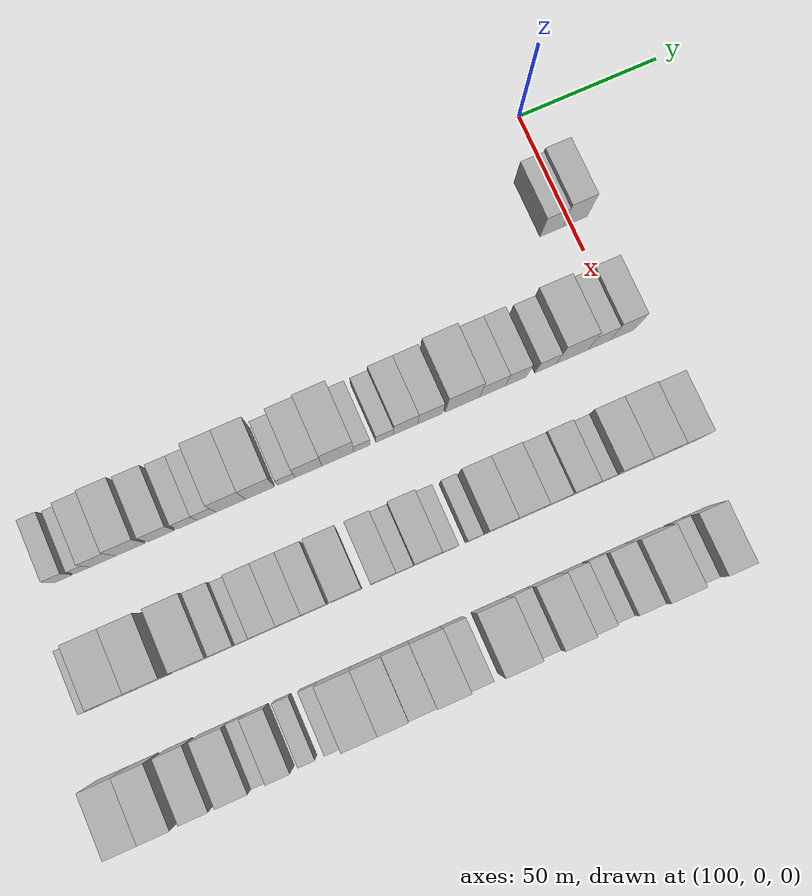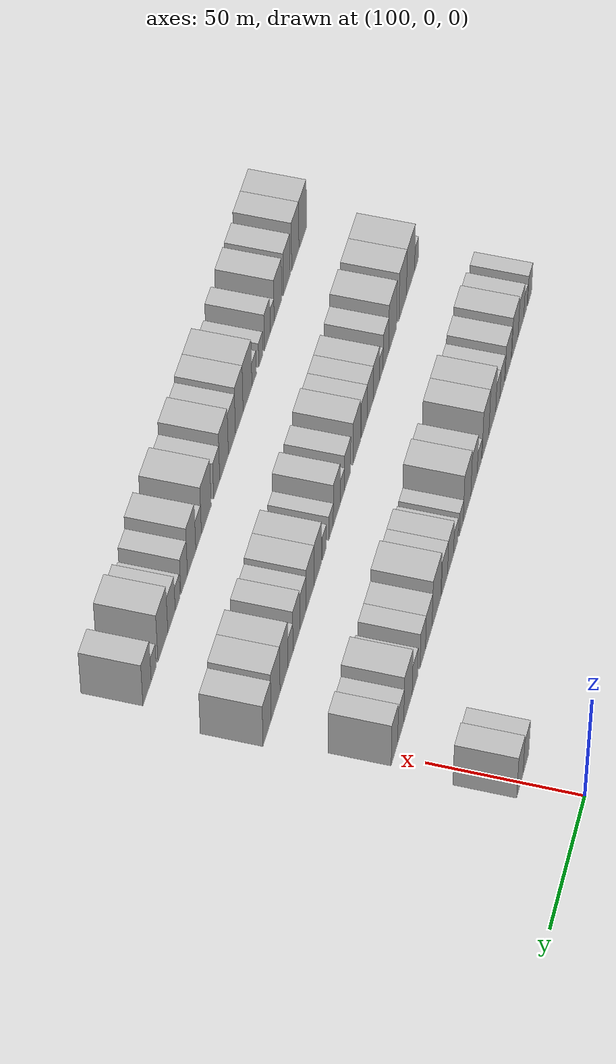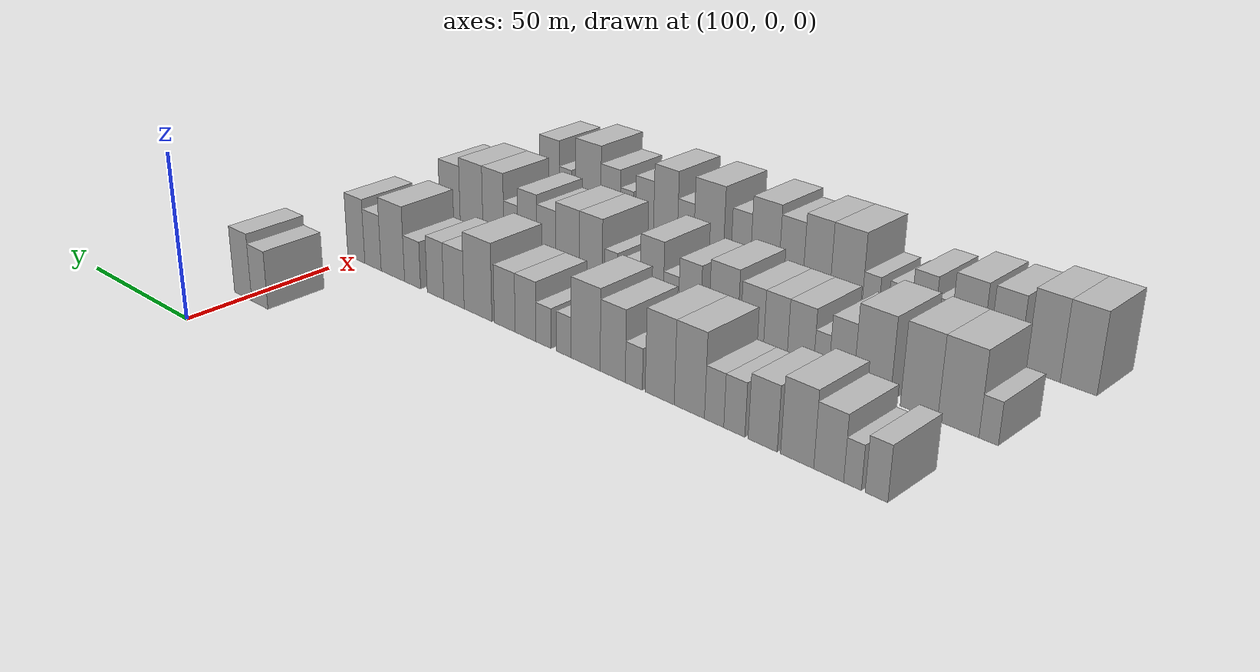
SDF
<sdf version="1.6">
 <world name="default">
  <model name="building_349">
   <static>1</static>
   <pose>130.0000 -6.8928 0 0.000000 0.000000 0.000000</pose>
   <link name="link">
    <pose>0 0 9.00 0 0 0</pose>
    <collision name="collision"><geometry><box><size>20.0000 8.0718 18.0000</size></box></geometry></collision>
    <visual name="visual">
     <cast_shadows>0</cast_shadows>
     <geometry><box><size>20.0000 8.0718 18.0000</size></box></geometry>
     <material>
      <script>
       <uri>model://HANNAS_wall/materials/scripts</uri>
       <uri>model://HANNAS_wall/materials/textures</uri>
       <name>vrc/HANNAS_wall</name>
      </script>
     </material>
    </visual>
   </link>
  </model>
  <model name="building_350">
   <static>1</static>
   <pose>130.0000 1.5265 0 0.000000 0.000000 0.000000</pose>
   <link name="link">
    <pose>0 0 10.50 0 0 0</pose>
    <collision name="collision"><geometry><box><size>20.0000 8.7669 21.0000</size></box></geometry></collision>
    <visual name="visual">
     <cast_shadows>0</cast_shadows>
     <geometry><box><size>20.0000 8.7669 21.0000</size></box></geometry>
     <material>
      <script>
       <uri>model://HANNAS_wall/materials/scripts</uri>
       <uri>model://HANNAS_wall/materials/textures</uri>
       <name>vrc/HANNAS_wall</name>
      </script>
     </material>
    </visual>
   </link>
  </model>
  <model name="building_469">
   <static>1</static>
   <pose>170.0000 -191.6110 0 0.000000 0.000000 0.000000</pose>
   <link name="link">
    <pose>0 0 7.50 0 0 0</pose>
    <collision name="collision"><geometry><box><size>20.0000 6.1556 15.0000</size></box></geometry></collision>
    <visual name="visual">
     <cast_shadows>0</cast_shadows>
     <geometry><box><size>20.0000 6.1556 15.0000</size></box></geometry>
     <material>
      <script>
       <uri>model://HANNAS_wall/materials/scripts</uri>
       <uri>model://HANNAS_wall/materials/textures</uri>
       <name>vrc/HANNAS_wall</name>
      </script>
     </material>
    </visual>
   </link>
  </model>
  <model name="building_470">
   <static>1</static>
   <pose>170.0000 -185.0662 0 0.000000 0.000000 0.000000</pose>
   <link name="link">
    <pose>0 0 6.00 0 0 0</pose>
    <collision name="collision"><geometry><box><size>20.0000 4.9342 12.0000</size></box></geometry></collision>
    <visual name="visual">
     <cast_shadows>0</cast_shadows>
     <geometry><box><size>20.0000 4.9342 12.0000</size></box></geometry>
     <material>
      <script>
       <uri>model://HANNAS_wall/materials/scripts</uri>
       <uri>model://HANNAS_wall/materials/textures</uri>
       <name>vrc/HANNAS_wall</name>
      </script>
     </material>
    </visual>
   </link>
  </model>
  <model name="building_471">
   <static>1</static>
   <pose>170.0000 -178.3505 0 0.000000 0.000000 0.000000</pose>
   <link name="link">
    <pose>0 0 9.00 0 0 0</pose>
    <collision name="collision"><geometry><box><size>20.0000 8.4971 18.0000</size></box></geometry></collision>
    <visual name="visual">
     <cast_shadows>0</cast_shadows>
     <geometry><box><size>20.0000 8.4971 18.0000</size></box></geometry>
     <material>
      <script>
       <uri>model://HANNAS_wall/materials/scripts</uri>
       <uri>model://HANNAS_wall/materials/textures</uri>
       <name>vrc/HANNAS_wall</name>
      </script>
     </material>
    </visual>
   </link>
  </model>
  <model name="building_472">
   <static>1</static>
   <pose>170.0000 -169.2389 0 0.000000 0.000000 0.000000</pose>
   <link name="link">
    <pose>0 0 10.50 0 0 0</pose>
    <collision name="collision"><geometry><box><size>20.0000 9.7262 21.0000</size></box></geometry></collision>
    <visual name="visual">
     <cast_shadows>0</cast_shadows>
     <geometry><box><size>20.0000 9.7262 21.0000</size></box></geometry>
     <material>
      <script>
       <uri>model://HANNAS_wall/materials/scripts</uri>
       <uri>model://HANNAS_wall/materials/textures</uri>
       <name>vrc/HANNAS_wall</name>
      </script>
     </material>
    </visual>
   </link>
  </model>
  <model name="building_473">
   <static>1</static>
   <pose>170.0000 -158.9366 0 0.000000 0.000000 0.000000</pose>
   <link name="link">
    <pose>0 0 9.00 0 0 0</pose>
    <collision name="collision"><geometry><box><size>20.0000 8.8783 18.0000</size></box></geometry></collision>
    <visual name="visual">
     <cast_shadows>0</cast_shadows>
     <geometry><box><size>20.0000 8.8783 18.0000</size></box></geometry>
     <material>
      <script>
       <uri>model://HANNAS_wall/materials/scripts</uri>
       <uri>model://HANNAS_wall/materials/textures</uri>
       <name>vrc/HANNAS_wall</name>
      </script>
     </material>
    </visual>
   </link>
  </model>
  <model name="building_474">
   <static>1</static>
   <pose>170.0000 -150.1886 0 0.000000 0.000000 0.000000</pose>
   <link name="link">
    <pose>0 0 7.50 0 0 0</pose>
    <collision name="collision"><geometry><box><size>20.0000 6.6178 15.0000</size></box></geometry></collision>
    <visual name="visual">
     <cast_shadows>0</cast_shadows>
     <geometry><box><size>20.0000 6.6178 15.0000</size></box></geometry>
     <material>
      <script>
       <uri>model://HANNAS_wall/materials/scripts</uri>
       <uri>model://HANNAS_wall/materials/textures</uri>
       <name>vrc/HANNAS_wall</name>
      </script>
     </material>
    </visual>
   </link>
  </model>
  <model name="building_475">
   <static>1</static>
   <pose>170.0000 -143.7810 0 0.000000 0.000000 0.000000</pose>
   <link name="link">
    <pose>0 0 7.50 0 0 0</pose>
    <collision name="collision"><geometry><box><size>20.0000 6.1973 15.0000</size></box></geometry></collision>
    <visual name="visual">
     <cast_shadows>0</cast_shadows>
     <geometry><box><size>20.0000 6.1973 15.0000</size></box></geometry>
     <material>
      <script>
       <uri>model://HANNAS_wall/materials/scripts</uri>
       <uri>model://HANNAS_wall/materials/textures</uri>
       <name>vrc/HANNAS_wall</name>
      </script>
     </material>
    </visual>
   </link>
  </model>
  <model name="building_476">
   <static>1</static>
   <pose>170.0000 -135.6864 0 0.000000 0.000000 0.000000</pose>
   <link name="link">
    <pose>0 0 12.00 0 0 0</pose>
    <collision name="collision"><geometry><box><size>20.0000 9.9919 24.0000</size></box></geometry></collision>
    <visual name="visual">
     <cast_shadows>0</cast_shadows>
     <geometry><box><size>20.0000 9.9919 24.0000</size></box></geometry>
     <material>
      <script>
       <uri>model://HANNAS_wall/materials/scripts</uri>
       <uri>model://HANNAS_wall/materials/textures</uri>
       <name>vrc/HANNAS_wall</name>
      </script>
     </material>
    </visual>
   </link>
  </model>
  <model name="building_477">
   <static>1</static>
   <pose>170.0000 -125.7331 0 0.000000 0.000000 0.000000</pose>
   <link name="link">
    <pose>0 0 12.00 0 0 0</pose>
    <collision name="collision"><geometry><box><size>20.0000 9.9149 24.0000</size></box></geometry></collision>
    <visual name="visual">
     <cast_shadows>0</cast_shadows>
     <geometry><box><size>20.0000 9.9149 24.0000</size></box></geometry>
     <material>
      <script>
       <uri>model://HANNAS_wall/materials/scripts</uri>
       <uri>model://HANNAS_wall/materials/textures</uri>
       <name>vrc/HANNAS_wall</name>
      </script>
     </material>
    </visual>
   </link>
  </model>
  <model name="building_478">
   <static>1</static>
   <pose>170.0000 -116.7799 0 0.000000 0.000000 0.000000</pose>
   <link name="link">
    <pose>0 0 6.00 0 0 0</pose>
    <collision name="collision"><geometry><box><size>20.0000 5.9915 12.0000</size></box></geometry></collision>
    <visual name="visual">
     <cast_shadows>0</cast_shadows>
     <geometry><box><size>20.0000 5.9915 12.0000</size></box></geometry>
     <material>
      <script>
       <uri>model://HANNAS_wall/materials/scripts</uri>
       <uri>model://HANNAS_wall/materials/textures</uri>
       <name>vrc/HANNAS_wall</name>
      </script>
     </material>
    </visual>
   </link>
  </model>
  <model name="building_479">
   <static>1</static>
   <pose>170.0000 -109.2508 0 0.000000 0.000000 0.000000</pose>
   <link name="link">
    <pose>0 0 10.50 0 0 0</pose>
    <collision name="collision"><geometry><box><size>20.0000 9.0666 21.0000</size></box></geometry></collision>
    <visual name="visual">
     <cast_shadows>0</cast_shadows>
     <geometry><box><size>20.0000 9.0666 21.0000</size></box></geometry>
     <material>
      <script>
       <uri>model://HANNAS_wall/materials/scripts</uri>
       <uri>model://HANNAS_wall/materials/textures</uri>
       <name>vrc/HANNAS_wall</name>
      </script>
     </material>
    </visual>
   </link>
  </model>
  <model name="building_480">
   <static>1</static>
   <pose>170.0000 -99.3218 0 0.000000 0.000000 0.000000</pose>
   <link name="link">
    <pose>0 0 12.00 0 0 0</pose>
    <collision name="collision"><geometry><box><size>20.0000 10.7915 24.0000</size></box></geometry></collision>
    <visual name="visual">
     <cast_shadows>0</cast_shadows>
     <geometry><box><size>20.0000 10.7915 24.0000</size></box></geometry>
     <material>
      <script>
       <uri>model://HANNAS_wall/materials/scripts</uri>
       <uri>model://HANNAS_wall/materials/textures</uri>
       <name>vrc/HANNAS_wall</name>
      </script>
     </material>
    </visual>
   </link>
  </model>
  <model name="building_481">
   <static>1</static>
   <pose>170.0000 -91.1072 0 0.000000 0.000000 0.000000</pose>
   <link name="link">
    <pose>0 0 6.00 0 0 0</pose>
    <collision name="collision"><geometry><box><size>20.0000 5.6377 12.0000</size></box></geometry></collision>
    <visual name="visual">
     <cast_shadows>0</cast_shadows>
     <geometry><box><size>20.0000 5.6377 12.0000</size></box></geometry>
     <material>
      <script>
       <uri>model://HANNAS_wall/materials/scripts</uri>
       <uri>model://HANNAS_wall/materials/textures</uri>
       <name>vrc/HANNAS_wall</name>
      </script>
     </material>
    </visual>
   </link>
  </model>
  <model name="building_482">
   <static>1</static>
   <pose>170.0000 -83.3127 0 0.000000 0.000000 0.000000</pose>
   <link name="link">
    <pose>0 0 6.00 0 0 0</pose>
    <collision name="collision"><geometry><box><size>20.0000 5.9513 12.0000</size></box></geometry></collision>
    <visual name="visual">
     <cast_shadows>0</cast_shadows>
     <geometry><box><size>20.0000 5.9513 12.0000</size></box></geometry>
     <material>
      <script>
       <uri>model://HANNAS_wall/materials/scripts</uri>
       <uri>model://HANNAS_wall/materials/textures</uri>
       <name>vrc/HANNAS_wall</name>
      </script>
     </material>
    </visual>
   </link>
  </model>
  <model name="building_483">
   <static>1</static>
   <pose>170.0000 -76.1805 0 0.000000 0.000000 0.000000</pose>
   <link name="link">
    <pose>0 0 9.00 0 0 0</pose>
    <collision name="collision"><geometry><box><size>20.0000 8.3131 18.0000</size></box></geometry></collision>
    <visual name="visual">
     <cast_shadows>0</cast_shadows>
     <geometry><box><size>20.0000 8.3131 18.0000</size></box></geometry>
     <material>
      <script>
       <uri>model://HANNAS_wall/materials/scripts</uri>
       <uri>model://HANNAS_wall/materials/textures</uri>
       <name>vrc/HANNAS_wall</name>
      </script>
     </material>
    </visual>
   </link>
  </model>
  <model name="building_484">
   <static>1</static>
   <pose>170.0000 -67.7469 0 0.000000 0.000000 0.000000</pose>
   <link name="link">
    <pose>0 0 9.00 0 0 0</pose>
    <collision name="collision"><geometry><box><size>20.0000 8.5540 18.0000</size></box></geometry></collision>
    <visual name="visual">
     <cast_shadows>0</cast_shadows>
     <geometry><box><size>20.0000 8.5540 18.0000</size></box></geometry>
     <material>
      <script>
       <uri>model://HANNAS_wall/materials/scripts</uri>
       <uri>model://HANNAS_wall/materials/textures</uri>
       <name>vrc/HANNAS_wall</name>
      </script>
     </material>
    </visual>
   </link>
  </model>
  <model name="building_485">
   <static>1</static>
   <pose>170.0000 -56.5778 0 0.000000 0.000000 0.000000</pose>
   <link name="link">
    <pose>0 0 12.00 0 0 0</pose>
    <collision name="collision"><geometry><box><size>20.0000 11.7844 24.0000</size></box></geometry></collision>
    <visual name="visual">
     <cast_shadows>0</cast_shadows>
     <geometry><box><size>20.0000 11.7844 24.0000</size></box></geometry>
     <material>
      <script>
       <uri>model://HANNAS_wall/materials/scripts</uri>
       <uri>model://HANNAS_wall/materials/textures</uri>
       <name>vrc/HANNAS_wall</name>
      </script>
     </material>
    </visual>
   </link>
  </model>
  <model name="building_486">
   <static>1</static>
   <pose>170.0000 -46.2279 0 0.000000 0.000000 0.000000</pose>
   <link name="link">
    <pose>0 0 9.00 0 0 0</pose>
    <collision name="collision"><geometry><box><size>20.0000 8.9153 18.0000</size></box></geometry></collision>
    <visual name="visual">
     <cast_shadows>0</cast_shadows>
     <geometry><box><size>20.0000 8.9153 18.0000</size></box></geometry>
     <material>
      <script>
       <uri>model://HANNAS_wall/materials/scripts</uri>
       <uri>model://HANNAS_wall/materials/textures</uri>
       <name>vrc/HANNAS_wall</name>
      </script>
     </material>
    </visual>
   </link>
  </model>
  <model name="building_487">
   <static>1</static>
   <pose>170.0000 -38.0439 0 0.000000 0.000000 0.000000</pose>
   <link name="link">
    <pose>0 0 9.00 0 0 0</pose>
    <collision name="collision"><geometry><box><size>20.0000 7.4527 18.0000</size></box></geometry></collision>
    <visual name="visual">
     <cast_shadows>0</cast_shadows>
     <geometry><box><size>20.0000 7.4527 18.0000</size></box></geometry>
     <material>
      <script>
       <uri>model://HANNAS_wall/materials/scripts</uri>
       <uri>model://HANNAS_wall/materials/textures</uri>
       <name>vrc/HANNAS_wall</name>
      </script>
     </material>
    </visual>
   </link>
  </model>
  <model name="building_488">
   <static>1</static>
   <pose>170.0000 -27.6184 0 0.000000 0.000000 0.000000</pose>
   <link name="link">
    <pose>0 0 7.50 0 0 0</pose>
    <collision name="collision"><geometry><box><size>20.0000 7.3983 15.0000</size></box></geometry></collision>
    <visual name="visual">
     <cast_shadows>0</cast_shadows>
     <geometry><box><size>20.0000 7.3983 15.0000</size></box></geometry>
     <material>
      <script>
       <uri>model://HANNAS_wall/materials/scripts</uri>
       <uri>model://HANNAS_wall/materials/textures</uri>
       <name>vrc/HANNAS_wall</name>
      </script>
     </material>
    </visual>
   </link>
  </model>
  <model name="building_489">
   <static>1</static>
   <pose>170.0000 -18.3587 0 0.000000 0.000000 0.000000</pose>
   <link name="link">
    <pose>0 0 12.00 0 0 0</pose>
    <collision name="collision"><geometry><box><size>20.0000 11.1211 24.0000</size></box></geometry></collision>
    <visual name="visual">
     <cast_shadows>0</cast_shadows>
     <geometry><box><size>20.0000 11.1211 24.0000</size></box></geometry>
     <material>
      <script>
       <uri>model://HANNAS_wall/materials/scripts</uri>
       <uri>model://HANNAS_wall/materials/textures</uri>
       <name>vrc/HANNAS_wall</name>
      </script>
     </material>
    </visual>
   </link>
  </model>
  <model name="building_490">
   <static>1</static>
   <pose>170.0000 -8.8186 0 0.000000 0.000000 0.000000</pose>
   <link name="link">
    <pose>0 0 9.00 0 0 0</pose>
    <collision name="collision"><geometry><box><size>20.0000 7.9590 18.0000</size></box></geometry></collision>
    <visual name="visual">
     <cast_shadows>0</cast_shadows>
     <geometry><box><size>20.0000 7.9590 18.0000</size></box></geometry>
     <material>
      <script>
       <uri>model://HANNAS_wall/materials/scripts</uri>
       <uri>model://HANNAS_wall/materials/textures</uri>
       <name>vrc/HANNAS_wall</name>
      </script>
     </material>
    </visual>
   </link>
  </model>
  <model name="building_491">
   <static>1</static>
   <pose>170.0000 -0.5933 0 0.000000 0.000000 0.000000</pose>
   <link name="link">
    <pose>0 0 10.50 0 0 0</pose>
    <collision name="collision"><geometry><box><size>20.0000 8.4917 21.0000</size></box></geometry></collision>
    <visual name="visual">
     <cast_shadows>0</cast_shadows>
     <geometry><box><size>20.0000 8.4917 21.0000</size></box></geometry>
     <material>
      <script>
       <uri>model://HANNAS_wall/materials/scripts</uri>
       <uri>model://HANNAS_wall/materials/textures</uri>
       <name>vrc/HANNAS_wall</name>
      </script>
     </material>
    </visual>
   </link>
  </model>
  <model name="building_606">
   <static>1</static>
   <pose>210.0000 -196.7554 0 0.000000 0.000000 0.000000</pose>
   <link name="link">
    <pose>0 0 6.00 0 0 0</pose>
    <collision name="collision"><geometry><box><size>20.0000 5.3253 12.0000</size></box></geometry></collision>
    <visual name="visual">
     <cast_shadows>0</cast_shadows>
     <geometry><box><size>20.0000 5.3253 12.0000</size></box></geometry>
     <material>
      <script>
       <uri>model://HANNAS_wall/materials/scripts</uri>
       <uri>model://HANNAS_wall/materials/textures</uri>
       <name>vrc/HANNAS_wall</name>
      </script>
     </material>
    </visual>
   </link>
  </model>
  <model name="building_607">
   <static>1</static>
   <pose>210.0000 -188.2774 0 0.000000 0.000000 0.000000</pose>
   <link name="link">
    <pose>0 0 12.00 0 0 0</pose>
    <collision name="collision"><geometry><box><size>20.0000 11.6308 24.0000</size></box></geometry></collision>
    <visual name="visual">
     <cast_shadows>0</cast_shadows>
     <geometry><box><size>20.0000 11.6308 24.0000</size></box></geometry>
     <material>
      <script>
       <uri>model://HANNAS_wall/materials/scripts</uri>
       <uri>model://HANNAS_wall/materials/textures</uri>
       <name>vrc/HANNAS_wall</name>
      </script>
     </material>
    </visual>
   </link>
  </model>
  <model name="building_608">
   <static>1</static>
   <pose>210.0000 -177.0182 0 0.000000 0.000000 0.000000</pose>
   <link name="link">
    <pose>0 0 12.00 0 0 0</pose>
    <collision name="collision"><geometry><box><size>20.0000 10.8878 24.0000</size></box></geometry></collision>
    <visual name="visual">
     <cast_shadows>0</cast_shadows>
     <geometry><box><size>20.0000 10.8878 24.0000</size></box></geometry>
     <material>
      <script>
       <uri>model://HANNAS_wall/materials/scripts</uri>
       <uri>model://HANNAS_wall/materials/textures</uri>
       <name>vrc/HANNAS_wall</name>
      </script>
     </material>
    </visual>
   </link>
  </model>
  <model name="building_609">
   <static>1</static>
   <pose>210.0000 -162.9472 0 0.000000 0.000000 0.000000</pose>
   <link name="link">
    <pose>0 0 12.00 0 0 0</pose>
    <collision name="collision"><geometry><box><size>20.0000 11.2542 24.0000</size></box></geometry></collision>
    <visual name="visual">
     <cast_shadows>0</cast_shadows>
     <geometry><box><size>20.0000 11.2542 24.0000</size></box></geometry>
     <material>
      <script>
       <uri>model://HANNAS_wall/materials/scripts</uri>
       <uri>model://HANNAS_wall/materials/textures</uri>
       <name>vrc/HANNAS_wall</name>
      </script>
     </material>
    </visual>
   </link>
  </model>
  <model name="building_610">
   <static>1</static>
   <pose>210.0000 -153.4004 0 0.000000 0.000000 0.000000</pose>
   <link name="link">
    <pose>0 0 9.00 0 0 0</pose>
    <collision name="collision"><geometry><box><size>20.0000 7.8394 18.0000</size></box></geometry></collision>
    <visual name="visual">
     <cast_shadows>0</cast_shadows>
     <geometry><box><size>20.0000 7.8394 18.0000</size></box></geometry>
     <material>
      <script>
       <uri>model://HANNAS_wall/materials/scripts</uri>
       <uri>model://HANNAS_wall/materials/textures</uri>
       <name>vrc/HANNAS_wall</name>
      </script>
     </material>
    </visual>
   </link>
  </model>
  <model name="building_611">
   <static>1</static>
   <pose>210.0000 -147.0201 0 0.000000 0.000000 0.000000</pose>
   <link name="link">
    <pose>0 0 6.00 0 0 0</pose>
    <collision name="collision"><geometry><box><size>20.0000 4.9212 12.0000</size></box></geometry></collision>
    <visual name="visual">
     <cast_shadows>0</cast_shadows>
     <geometry><box><size>20.0000 4.9212 12.0000</size></box></geometry>
     <material>
      <script>
       <uri>model://HANNAS_wall/materials/scripts</uri>
       <uri>model://HANNAS_wall/materials/textures</uri>
       <name>vrc/HANNAS_wall</name>
      </script>
     </material>
    </visual>
   </link>
  </model>
  <model name="building_612">
   <static>1</static>
   <pose>210.0000 -140.2068 0 0.000000 0.000000 0.000000</pose>
   <link name="link">
    <pose>0 0 9.00 0 0 0</pose>
    <collision name="collision"><geometry><box><size>20.0000 8.7052 18.0000</size></box></geometry></collision>
    <visual name="visual">
     <cast_shadows>0</cast_shadows>
     <geometry><box><size>20.0000 8.7052 18.0000</size></box></geometry>
     <material>
      <script>
       <uri>model://HANNAS_wall/materials/scripts</uri>
       <uri>model://HANNAS_wall/materials/textures</uri>
       <name>vrc/HANNAS_wall</name>
      </script>
     </material>
    </visual>
   </link>
  </model>
  <model name="building_613">
   <static>1</static>
   <pose>210.0000 -131.8505 0 0.000000 0.000000 0.000000</pose>
   <link name="link">
    <pose>0 0 9.00 0 0 0</pose>
    <collision name="collision"><geometry><box><size>20.0000 8.0074 18.0000</size></box></geometry></collision>
    <visual name="visual">
     <cast_shadows>0</cast_shadows>
     <geometry><box><size>20.0000 8.0074 18.0000</size></box></geometry>
     <material>
      <script>
       <uri>model://HANNAS_wall/materials/scripts</uri>
       <uri>model://HANNAS_wall/materials/textures</uri>
       <name>vrc/HANNAS_wall</name>
      </script>
     </material>
    </visual>
   </link>
  </model>
  <model name="building_614">
   <static>1</static>
   <pose>210.0000 -123.8064 0 0.000000 0.000000 0.000000</pose>
   <link name="link">
    <pose>0 0 9.00 0 0 0</pose>
    <collision name="collision"><geometry><box><size>20.0000 8.0809 18.0000</size></box></geometry></collision>
    <visual name="visual">
     <cast_shadows>0</cast_shadows>
     <geometry><box><size>20.0000 8.0809 18.0000</size></box></geometry>
     <material>
      <script>
       <uri>model://HANNAS_wall/materials/scripts</uri>
       <uri>model://HANNAS_wall/materials/textures</uri>
       <name>vrc/HANNAS_wall</name>
      </script>
     </material>
    </visual>
   </link>
  </model>
  <model name="building_615">
   <static>1</static>
   <pose>210.0000 -113.6383 0 0.000000 0.000000 0.000000</pose>
   <link name="link">
    <pose>0 0 10.50 0 0 0</pose>
    <collision name="collision"><geometry><box><size>20.0000 10.2553 21.0000</size></box></geometry></collision>
    <visual name="visual">
     <cast_shadows>0</cast_shadows>
     <geometry><box><size>20.0000 10.2553 21.0000</size></box></geometry>
     <material>
      <script>
       <uri>model://HANNAS_wall/materials/scripts</uri>
       <uri>model://HANNAS_wall/materials/textures</uri>
       <name>vrc/HANNAS_wall</name>
      </script>
     </material>
    </visual>
   </link>
  </model>
  <model name="building_616">
   <static>1</static>
   <pose>210.0000 -101.4064 0 0.000000 0.000000 0.000000</pose>
   <link name="link">
    <pose>0 0 9.00 0 0 0</pose>
    <collision name="collision"><geometry><box><size>20.0000 8.2085 18.0000</size></box></geometry></collision>
    <visual name="visual">
     <cast_shadows>0</cast_shadows>
     <geometry><box><size>20.0000 8.2085 18.0000</size></box></geometry>
     <material>
      <script>
       <uri>model://HANNAS_wall/materials/scripts</uri>
       <uri>model://HANNAS_wall/materials/textures</uri>
       <name>vrc/HANNAS_wall</name>
      </script>
     </material>
    </visual>
   </link>
  </model>
  <model name="building_617">
   <static>1</static>
   <pose>210.0000 -94.3986 0 0.000000 0.000000 0.000000</pose>
   <link name="link">
    <pose>0 0 6.00 0 0 0</pose>
    <collision name="collision"><geometry><box><size>20.0000 5.8070 12.0000</size></box></geometry></collision>
    <visual name="visual">
     <cast_shadows>0</cast_shadows>
     <geometry><box><size>20.0000 5.8070 12.0000</size></box></geometry>
     <material>
      <script>
       <uri>model://HANNAS_wall/materials/scripts</uri>
       <uri>model://HANNAS_wall/materials/textures</uri>
       <name>vrc/HANNAS_wall</name>
      </script>
     </material>
    </visual>
   </link>
  </model>
  <model name="building_618">
   <static>1</static>
   <pose>210.0000 -86.9911 0 0.000000 0.000000 0.000000</pose>
   <link name="link">
    <pose>0 0 10.50 0 0 0</pose>
    <collision name="collision"><geometry><box><size>20.0000 9.0080 21.0000</size></box></geometry></collision>
    <visual name="visual">
     <cast_shadows>0</cast_shadows>
     <geometry><box><size>20.0000 9.0080 21.0000</size></box></geometry>
     <material>
      <script>
       <uri>model://HANNAS_wall/materials/scripts</uri>
       <uri>model://HANNAS_wall/materials/textures</uri>
       <name>vrc/HANNAS_wall</name>
      </script>
     </material>
    </visual>
   </link>
  </model>
  <model name="building_619">
   <static>1</static>
   <pose>210.0000 -79.5554 0 0.000000 0.000000 0.000000</pose>
   <link name="link">
    <pose>0 0 6.00 0 0 0</pose>
    <collision name="collision"><geometry><box><size>20.0000 5.8636 12.0000</size></box></geometry></collision>
    <visual name="visual">
     <cast_shadows>0</cast_shadows>
     <geometry><box><size>20.0000 5.8636 12.0000</size></box></geometry>
     <material>
      <script>
       <uri>model://HANNAS_wall/materials/scripts</uri>
       <uri>model://HANNAS_wall/materials/textures</uri>
       <name>vrc/HANNAS_wall</name>
      </script>
     </material>
    </visual>
   </link>
  </model>
  <model name="building_620">
   <static>1</static>
   <pose>210.0000 -70.9945 0 0.000000 0.000000 0.000000</pose>
   <link name="link">
    <pose>0 0 6.00 0 0 0</pose>
    <collision name="collision"><geometry><box><size>20.0000 5.2582 12.0000</size></box></geometry></collision>
    <visual name="visual">
     <cast_shadows>0</cast_shadows>
     <geometry><box><size>20.0000 5.2582 12.0000</size></box></geometry>
     <material>
      <script>
       <uri>model://HANNAS_wall/materials/scripts</uri>
       <uri>model://HANNAS_wall/materials/textures</uri>
       <name>vrc/HANNAS_wall</name>
      </script>
     </material>
    </visual>
   </link>
  </model>
  <model name="building_621">
   <static>1</static>
   <pose>210.0000 -62.5736 0 0.000000 0.000000 0.000000</pose>
   <link name="link">
    <pose>0 0 10.50 0 0 0</pose>
    <collision name="collision"><geometry><box><size>20.0000 9.5835 21.0000</size></box></geometry></collision>
    <visual name="visual">
     <cast_shadows>0</cast_shadows>
     <geometry><box><size>20.0000 9.5835 21.0000</size></box></geometry>
     <material>
      <script>
       <uri>model://HANNAS_wall/materials/scripts</uri>
       <uri>model://HANNAS_wall/materials/textures</uri>
       <name>vrc/HANNAS_wall</name>
      </script>
     </material>
    </visual>
   </link>
  </model>
  <model name="building_622">
   <static>1</static>
   <pose>210.0000 -52.7031 0 0.000000 0.000000 0.000000</pose>
   <link name="link">
    <pose>0 0 10.50 0 0 0</pose>
    <collision name="collision"><geometry><box><size>20.0000 10.1574 21.0000</size></box></geometry></collision>
    <visual name="visual">
     <cast_shadows>0</cast_shadows>
     <geometry><box><size>20.0000 10.1574 21.0000</size></box></geometry>
     <material>
      <script>
       <uri>model://HANNAS_wall/materials/scripts</uri>
       <uri>model://HANNAS_wall/materials/textures</uri>
       <name>vrc/HANNAS_wall</name>
      </script>
     </material>
    </visual>
   </link>
  </model>
  <model name="building_623">
   <static>1</static>
   <pose>210.0000 -43.5607 0 0.000000 0.000000 0.000000</pose>
   <link name="link">
    <pose>0 0 9.00 0 0 0</pose>
    <collision name="collision"><geometry><box><size>20.0000 8.1274 18.0000</size></box></geometry></collision>
    <visual name="visual">
     <cast_shadows>0</cast_shadows>
     <geometry><box><size>20.0000 8.1274 18.0000</size></box></geometry>
     <material>
      <script>
       <uri>model://HANNAS_wall/materials/scripts</uri>
       <uri>model://HANNAS_wall/materials/textures</uri>
       <name>vrc/HANNAS_wall</name>
      </script>
     </material>
    </visual>
   </link>
  </model>
  <model name="building_624">
   <static>1</static>
   <pose>210.0000 -35.2034 0 0.000000 0.000000 0.000000</pose>
   <link name="link">
    <pose>0 0 10.50 0 0 0</pose>
    <collision name="collision"><geometry><box><size>20.0000 8.5874 21.0000</size></box></geometry></collision>
    <visual name="visual">
     <cast_shadows>0</cast_shadows>
     <geometry><box><size>20.0000 8.5874 21.0000</size></box></geometry>
     <material>
      <script>
       <uri>model://HANNAS_wall/materials/scripts</uri>
       <uri>model://HANNAS_wall/materials/textures</uri>
       <name>vrc/HANNAS_wall</name>
      </script>
     </material>
    </visual>
   </link>
  </model>
  <model name="building_625">
   <static>1</static>
   <pose>210.0000 -27.7339 0 0.000000 0.000000 0.000000</pose>
   <link name="link">
    <pose>0 0 7.50 0 0 0</pose>
    <collision name="collision"><geometry><box><size>20.0000 6.3515 15.0000</size></box></geometry></collision>
    <visual name="visual">
     <cast_shadows>0</cast_shadows>
     <geometry><box><size>20.0000 6.3515 15.0000</size></box></geometry>
     <material>
      <script>
       <uri>model://HANNAS_wall/materials/scripts</uri>
       <uri>model://HANNAS_wall/materials/textures</uri>
       <name>vrc/HANNAS_wall</name>
      </script>
     </material>
    </visual>
   </link>
  </model>
  <model name="building_626">
   <static>1</static>
   <pose>210.0000 -19.6580 0 0.000000 0.000000 0.000000</pose>
   <link name="link">
    <pose>0 0 12.00 0 0 0</pose>
    <collision name="collision"><geometry><box><size>20.0000 9.8004 24.0000</size></box></geometry></collision>
    <visual name="visual">
     <cast_shadows>0</cast_shadows>
     <geometry><box><size>20.0000 9.8004 24.0000</size></box></geometry>
     <material>
      <script>
       <uri>model://HANNAS_wall/materials/scripts</uri>
       <uri>model://HANNAS_wall/materials/textures</uri>
       <name>vrc/HANNAS_wall</name>
      </script>
     </material>
    </visual>
   </link>
  </model>
  <model name="building_627">
   <static>1</static>
   <pose>210.0000 -9.2833 0 0.000000 0.000000 0.000000</pose>
   <link name="link">
    <pose>0 0 12.00 0 0 0</pose>
    <collision name="collision"><geometry><box><size>20.0000 10.9490 24.0000</size></box></geometry></collision>
    <visual name="visual">
     <cast_shadows>0</cast_shadows>
     <geometry><box><size>20.0000 10.9490 24.0000</size></box></geometry>
     <material>
      <script>
       <uri>model://HANNAS_wall/materials/scripts</uri>
       <uri>model://HANNAS_wall/materials/textures</uri>
       <name>vrc/HANNAS_wall</name>
      </script>
     </material>
    </visual>
   </link>
  </model>
  <model name="building_628">
   <static>1</static>
   <pose>210.0000 1.2090 0 0.000000 0.000000 0.000000</pose>
   <link name="link">
    <pose>0 0 10.50 0 0 0</pose>
    <collision name="collision"><geometry><box><size>20.0000 10.0356 21.0000</size></box></geometry></collision>
    <visual name="visual">
     <cast_shadows>0</cast_shadows>
     <geometry><box><size>20.0000 10.0356 21.0000</size></box></geometry>
     <material>
      <script>
       <uri>model://HANNAS_wall/materials/scripts</uri>
       <uri>model://HANNAS_wall/materials/textures</uri>
       <name>vrc/HANNAS_wall</name>
      </script>
     </material>
    </visual>
   </link>
  </model>
  <model name="building_751">
   <static>1</static>
   <pose>250.0000 -199.3009 0 0.000000 0.000000 0.000000</pose>
   <link name="link">
    <pose>0 0 12.00 0 0 0</pose>
    <collision name="collision"><geometry><box><size>20.0000 10.3000 24.0000</size></box></geometry></collision>
    <visual name="visual">
     <cast_shadows>0</cast_shadows>
     <geometry><box><size>20.0000 10.3000 24.0000</size></box></geometry>
     <material>
      <script>
       <uri>model://HANNAS_wall/materials/scripts</uri>
       <uri>model://HANNAS_wall/materials/textures</uri>
       <name>vrc/HANNAS_wall</name>
      </script>
     </material>
    </visual>
   </link>
  </model>
  <model name="building_752">
   <static>1</static>
   <pose>250.0000 -189.2181 0 0.000000 0.000000 0.000000</pose>
   <link name="link">
    <pose>0 0 12.00 0 0 0</pose>
    <collision name="collision"><geometry><box><size>20.0000 9.8656 24.0000</size></box></geometry></collision>
    <visual name="visual">
     <cast_shadows>0</cast_shadows>
     <geometry><box><size>20.0000 9.8656 24.0000</size></box></geometry>
     <material>
      <script>
       <uri>model://HANNAS_wall/materials/scripts</uri>
       <uri>model://HANNAS_wall/materials/textures</uri>
       <name>vrc/HANNAS_wall</name>
      </script>
     </material>
    </visual>
   </link>
  </model>
  <model name="building_753">
   <static>1</static>
   <pose>250.0000 -177.7001 0 0.000000 0.000000 0.000000</pose>
   <link name="link">
    <pose>0 0 10.50 0 0 0</pose>
    <collision name="collision"><geometry><box><size>20.0000 9.1704 21.0000</size></box></geometry></collision>
    <visual name="visual">
     <cast_shadows>0</cast_shadows>
     <geometry><box><size>20.0000 9.1704 21.0000</size></box></geometry>
     <material>
      <script>
       <uri>model://HANNAS_wall/materials/scripts</uri>
       <uri>model://HANNAS_wall/materials/textures</uri>
       <name>vrc/HANNAS_wall</name>
      </script>
     </material>
    </visual>
   </link>
  </model>
  <model name="building_754">
   <static>1</static>
   <pose>250.0000 -166.0740 0 0.000000 0.000000 0.000000</pose>
   <link name="link">
    <pose>0 0 10.50 0 0 0</pose>
    <collision name="collision"><geometry><box><size>20.0000 10.0817 21.0000</size></box></geometry></collision>
    <visual name="visual">
     <cast_shadows>0</cast_shadows>
     <geometry><box><size>20.0000 10.0817 21.0000</size></box></geometry>
     <material>
      <script>
       <uri>model://HANNAS_wall/materials/scripts</uri>
       <uri>model://HANNAS_wall/materials/textures</uri>
       <name>vrc/HANNAS_wall</name>
      </script>
     </material>
    </visual>
   </link>
  </model>
  <model name="building_755">
   <static>1</static>
   <pose>250.0000 -158.4992 0 0.000000 0.000000 0.000000</pose>
   <link name="link">
    <pose>0 0 6.00 0 0 0</pose>
    <collision name="collision"><geometry><box><size>20.0000 5.0678 12.0000</size></box></geometry></collision>
    <visual name="visual">
     <cast_shadows>0</cast_shadows>
     <geometry><box><size>20.0000 5.0678 12.0000</size></box></geometry>
     <material>
      <script>
       <uri>model://HANNAS_wall/materials/scripts</uri>
       <uri>model://HANNAS_wall/materials/textures</uri>
       <name>vrc/HANNAS_wall</name>
      </script>
     </material>
    </visual>
   </link>
  </model>
  <model name="building_756">
   <static>1</static>
   <pose>250.0000 -152.1267 0 0.000000 0.000000 0.000000</pose>
   <link name="link">
    <pose>0 0 9.00 0 0 0</pose>
    <collision name="collision"><geometry><box><size>20.0000 7.6771 18.0000</size></box></geometry></collision>
    <visual name="visual">
     <cast_shadows>0</cast_shadows>
     <geometry><box><size>20.0000 7.6771 18.0000</size></box></geometry>
     <material>
      <script>
       <uri>model://HANNAS_wall/materials/scripts</uri>
       <uri>model://HANNAS_wall/materials/textures</uri>
       <name>vrc/HANNAS_wall</name>
      </script>
     </material>
    </visual>
   </link>
  </model>
  <model name="building_757">
   <static>1</static>
   <pose>250.0000 -143.5842 0 0.000000 0.000000 0.000000</pose>
   <link name="link">
    <pose>0 0 6.00 0 0 0</pose>
    <collision name="collision"><geometry><box><size>20.0000 5.4080 12.0000</size></box></geometry></collision>
    <visual name="visual">
     <cast_shadows>0</cast_shadows>
     <geometry><box><size>20.0000 5.4080 12.0000</size></box></geometry>
     <material>
      <script>
       <uri>model://HANNAS_wall/materials/scripts</uri>
       <uri>model://HANNAS_wall/materials/textures</uri>
       <name>vrc/HANNAS_wall</name>
      </script>
     </material>
    </visual>
   </link>
  </model>
  <model name="building_758">
   <static>1</static>
   <pose>250.0000 -135.0129 0 0.000000 0.000000 0.000000</pose>
   <link name="link">
    <pose>0 0 6.00 0 0 0</pose>
    <collision name="collision"><geometry><box><size>20.0000 5.7346 12.0000</size></box></geometry></collision>
    <visual name="visual">
     <cast_shadows>0</cast_shadows>
     <geometry><box><size>20.0000 5.7346 12.0000</size></box></geometry>
     <material>
      <script>
       <uri>model://HANNAS_wall/materials/scripts</uri>
       <uri>model://HANNAS_wall/materials/textures</uri>
       <name>vrc/HANNAS_wall</name>
      </script>
     </material>
    </visual>
   </link>
  </model>
  <model name="building_759">
   <static>1</static>
   <pose>250.0000 -126.5255 0 0.000000 0.000000 0.000000</pose>
   <link name="link">
    <pose>0 0 12.00 0 0 0</pose>
    <collision name="collision"><geometry><box><size>20.0000 11.2402 24.0000</size></box></geometry></collision>
    <visual name="visual">
     <cast_shadows>0</cast_shadows>
     <geometry><box><size>20.0000 11.2402 24.0000</size></box></geometry>
     <material>
      <script>
       <uri>model://HANNAS_wall/materials/scripts</uri>
       <uri>model://HANNAS_wall/materials/textures</uri>
       <name>vrc/HANNAS_wall</name>
      </script>
     </material>
    </visual>
   </link>
  </model>
  <model name="building_760">
   <static>1</static>
   <pose>250.0000 -116.0358 0 0.000000 0.000000 0.000000</pose>
   <link name="link">
    <pose>0 0 12.00 0 0 0</pose>
    <collision name="collision"><geometry><box><size>20.0000 9.7391 24.0000</size></box></geometry></collision>
    <visual name="visual">
     <cast_shadows>0</cast_shadows>
     <geometry><box><size>20.0000 9.7391 24.0000</size></box></geometry>
     <material>
      <script>
       <uri>model://HANNAS_wall/materials/scripts</uri>
       <uri>model://HANNAS_wall/materials/textures</uri>
       <name>vrc/HANNAS_wall</name>
      </script>
     </material>
    </visual>
   </link>
  </model>
  <model name="building_761">
   <static>1</static>
   <pose>250.0000 -106.7100 0 0.000000 0.000000 0.000000</pose>
   <link name="link">
    <pose>0 0 10.50 0 0 0</pose>
    <collision name="collision"><geometry><box><size>20.0000 8.9125 21.0000</size></box></geometry></collision>
    <visual name="visual">
     <cast_shadows>0</cast_shadows>
     <geometry><box><size>20.0000 8.9125 21.0000</size></box></geometry>
     <material>
      <script>
       <uri>model://HANNAS_wall/materials/scripts</uri>
       <uri>model://HANNAS_wall/materials/textures</uri>
       <name>vrc/HANNAS_wall</name>
      </script>
     </material>
    </visual>
   </link>
  </model>
  <model name="building_762">
   <static>1</static>
   <pose>250.0000 -96.8572 0 0.000000 0.000000 0.000000</pose>
   <link name="link">
    <pose>0 0 12.00 0 0 0</pose>
    <collision name="collision"><geometry><box><size>20.0000 10.7932 24.0000</size></box></geometry></collision>
    <visual name="visual">
     <cast_shadows>0</cast_shadows>
     <geometry><box><size>20.0000 10.7932 24.0000</size></box></geometry>
     <material>
      <script>
       <uri>model://HANNAS_wall/materials/scripts</uri>
       <uri>model://HANNAS_wall/materials/textures</uri>
       <name>vrc/HANNAS_wall</name>
      </script>
     </material>
    </visual>
   </link>
  </model>
  <model name="building_763">
   <static>1</static>
   <pose>250.0000 -87.6814 0 0.000000 0.000000 0.000000</pose>
   <link name="link">
    <pose>0 0 9.00 0 0 0</pose>
    <collision name="collision"><geometry><box><size>20.0000 7.5583 18.0000</size></box></geometry></collision>
    <visual name="visual">
     <cast_shadows>0</cast_shadows>
     <geometry><box><size>20.0000 7.5583 18.0000</size></box></geometry>
     <material>
      <script>
       <uri>model://HANNAS_wall/materials/scripts</uri>
       <uri>model://HANNAS_wall/materials/textures</uri>
       <name>vrc/HANNAS_wall</name>
      </script>
     </material>
    </visual>
   </link>
  </model>
  <model name="building_764">
   <static>1</static>
   <pose>250.0000 -74.9074 0 0.000000 0.000000 0.000000</pose>
   <link name="link">
    <pose>0 0 12.00 0 0 0</pose>
    <collision name="collision"><geometry><box><size>20.0000 11.9895 24.0000</size></box></geometry></collision>
    <visual name="visual">
     <cast_shadows>0</cast_shadows>
     <geometry><box><size>20.0000 11.9895 24.0000</size></box></geometry>
     <material>
      <script>
       <uri>model://HANNAS_wall/materials/scripts</uri>
       <uri>model://HANNAS_wall/materials/textures</uri>
       <name>vrc/HANNAS_wall</name>
      </script>
     </material>
    </visual>
   </link>
  </model>
  <model name="building_765">
   <static>1</static>
   <pose>250.0000 -65.5080 0 0.000000 0.000000 0.000000</pose>
   <link name="link">
    <pose>0 0 7.50 0 0 0</pose>
    <collision name="collision"><geometry><box><size>20.0000 6.8093 15.0000</size></box></geometry></collision>
    <visual name="visual">
     <cast_shadows>0</cast_shadows>
     <geometry><box><size>20.0000 6.8093 15.0000</size></box></geometry>
     <material>
      <script>
       <uri>model://HANNAS_wall/materials/scripts</uri>
       <uri>model://HANNAS_wall/materials/textures</uri>
       <name>vrc/HANNAS_wall</name>
      </script>
     </material>
    </visual>
   </link>
  </model>
  <model name="building_766">
   <static>1</static>
   <pose>250.0000 -57.0430 0 0.000000 0.000000 0.000000</pose>
   <link name="link">
    <pose>0 0 12.00 0 0 0</pose>
    <collision name="collision"><geometry><box><size>20.0000 10.1206 24.0000</size></box></geometry></collision>
    <visual name="visual">
     <cast_shadows>0</cast_shadows>
     <geometry><box><size>20.0000 10.1206 24.0000</size></box></geometry>
     <material>
      <script>
       <uri>model://HANNAS_wall/materials/scripts</uri>
       <uri>model://HANNAS_wall/materials/textures</uri>
       <name>vrc/HANNAS_wall</name>
      </script>
     </material>
    </visual>
   </link>
  </model>
  <model name="building_767">
   <static>1</static>
   <pose>250.0000 -48.0389 0 0.000000 0.000000 0.000000</pose>
   <link name="link">
    <pose>0 0 9.00 0 0 0</pose>
    <collision name="collision"><geometry><box><size>20.0000 7.8876 18.0000</size></box></geometry></collision>
    <visual name="visual">
     <cast_shadows>0</cast_shadows>
     <geometry><box><size>20.0000 7.8876 18.0000</size></box></geometry>
     <material>
      <script>
       <uri>model://HANNAS_wall/materials/scripts</uri>
       <uri>model://HANNAS_wall/materials/textures</uri>
       <name>vrc/HANNAS_wall</name>
      </script>
     </material>
    </visual>
   </link>
  </model>
  <model name="building_768">
   <static>1</static>
   <pose>250.0000 -40.2222 0 0.000000 0.000000 0.000000</pose>
   <link name="link">
    <pose>0 0 6.00 0 0 0</pose>
    <collision name="collision"><geometry><box><size>20.0000 5.7458 12.0000</size></box></geometry></collision>
    <visual name="visual">
     <cast_shadows>0</cast_shadows>
     <geometry><box><size>20.0000 5.7458 12.0000</size></box></geometry>
     <material>
      <script>
       <uri>model://HANNAS_wall/materials/scripts</uri>
       <uri>model://HANNAS_wall/materials/textures</uri>
       <name>vrc/HANNAS_wall</name>
      </script>
     </material>
    </visual>
   </link>
  </model>
  <model name="building_769">
   <static>1</static>
   <pose>250.0000 -32.9811 0 0.000000 0.000000 0.000000</pose>
   <link name="link">
    <pose>0 0 9.00 0 0 0</pose>
    <collision name="collision"><geometry><box><size>20.0000 8.7365 18.0000</size></box></geometry></collision>
    <visual name="visual">
     <cast_shadows>0</cast_shadows>
     <geometry><box><size>20.0000 8.7365 18.0000</size></box></geometry>
     <material>
      <script>
       <uri>model://HANNAS_wall/materials/scripts</uri>
       <uri>model://HANNAS_wall/materials/textures</uri>
       <name>vrc/HANNAS_wall</name>
      </script>
     </material>
    </visual>
   </link>
  </model>
  <model name="building_770">
   <static>1</static>
   <pose>250.0000 -22.7975 0 0.000000 0.000000 0.000000</pose>
   <link name="link">
    <pose>0 0 12.00 0 0 0</pose>
    <collision name="collision"><geometry><box><size>20.0000 11.6307 24.0000</size></box></geometry></collision>
    <visual name="visual">
     <cast_shadows>0</cast_shadows>
     <geometry><box><size>20.0000 11.6307 24.0000</size></box></geometry>
     <material>
      <script>
       <uri>model://HANNAS_wall/materials/scripts</uri>
       <uri>model://HANNAS_wall/materials/textures</uri>
       <name>vrc/HANNAS_wall</name>
      </script>
     </material>
    </visual>
   </link>
  </model>
  <model name="building_771">
   <static>1</static>
   <pose>250.0000 -12.0534 0 0.000000 0.000000 0.000000</pose>
   <link name="link">
    <pose>0 0 6.00 0 0 0</pose>
    <collision name="collision"><geometry><box><size>20.0000 5.8575 12.0000</size></box></geometry></collision>
    <visual name="visual">
     <cast_shadows>0</cast_shadows>
     <geometry><box><size>20.0000 5.8575 12.0000</size></box></geometry>
     <material>
      <script>
       <uri>model://HANNAS_wall/materials/scripts</uri>
       <uri>model://HANNAS_wall/materials/textures</uri>
       <name>vrc/HANNAS_wall</name>
      </script>
     </material>
    </visual>
   </link>
  </model>
  <model name="building_772">
   <static>1</static>
   <pose>250.0000 -4.3492 0 0.000000 0.000000 0.000000</pose>
   <link name="link">
    <pose>0 0 10.50 0 0 0</pose>
    <collision name="collision"><geometry><box><size>20.0000 9.5511 21.0000</size></box></geometry></collision>
    <visual name="visual">
     <cast_shadows>0</cast_shadows>
     <geometry><box><size>20.0000 9.5511 21.0000</size></box></geometry>
     <material>
      <script>
       <uri>model://HANNAS_wall/materials/scripts</uri>
       <uri>model://HANNAS_wall/materials/textures</uri>
       <name>vrc/HANNAS_wall</name>
      </script>
     </material>
    </visual>
   </link>
  </model>
 </world>
</sdf>
